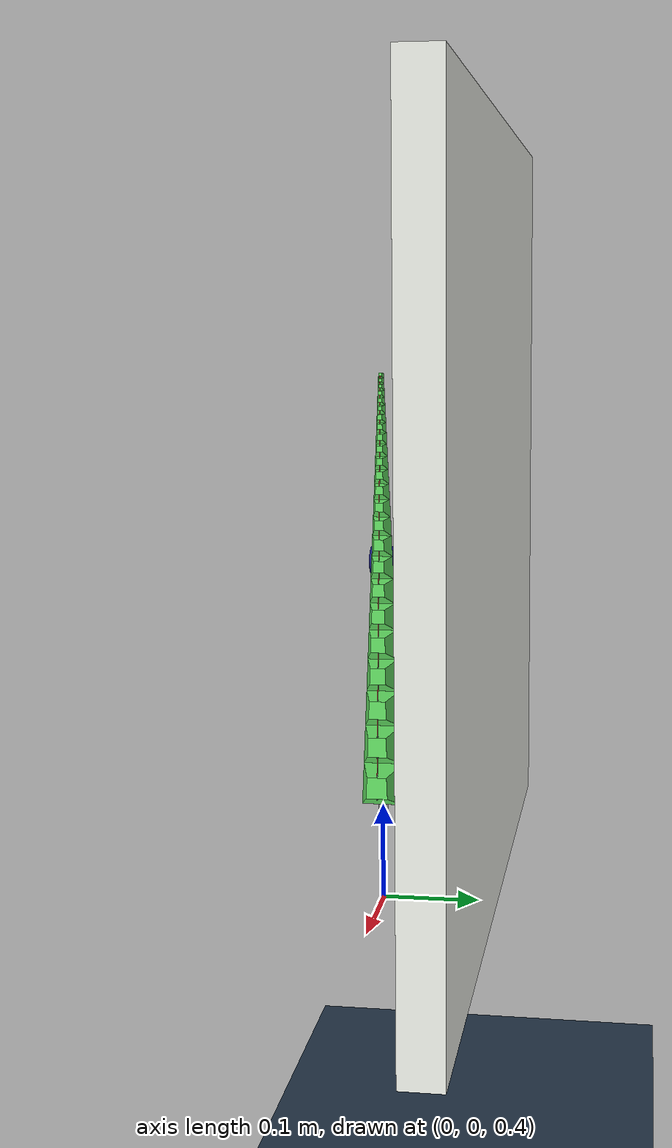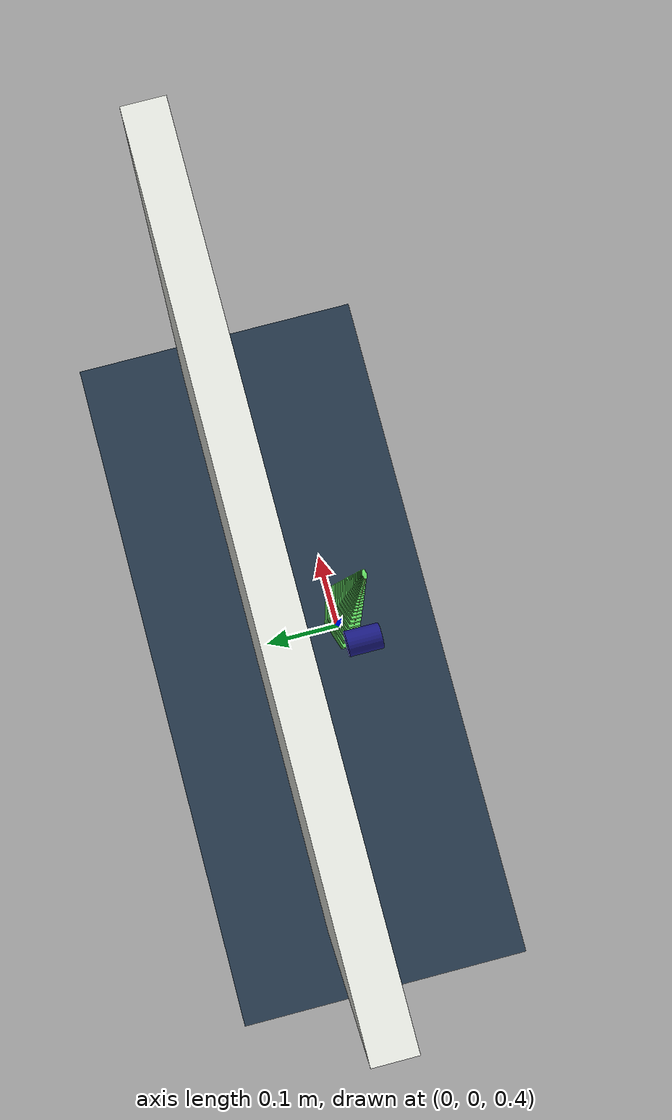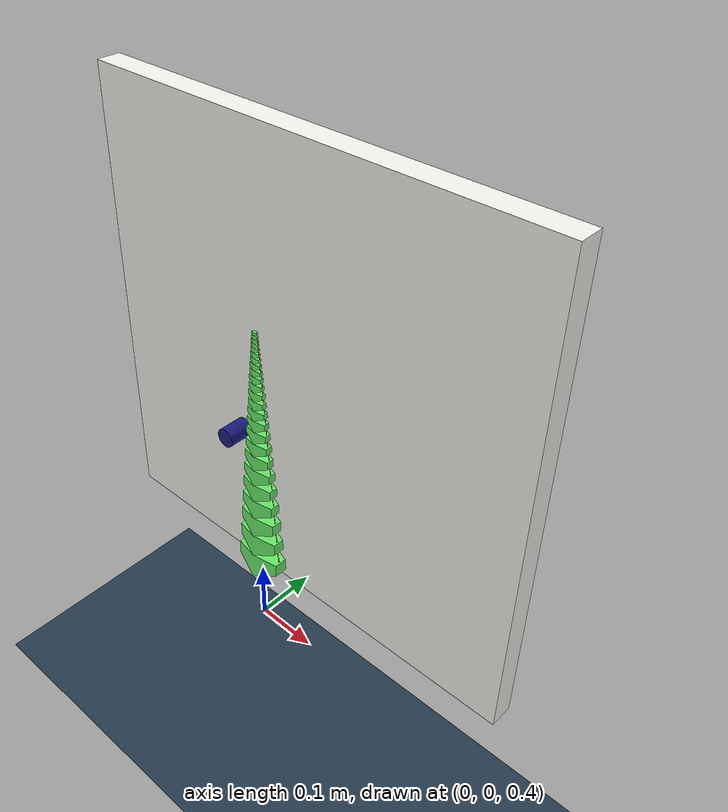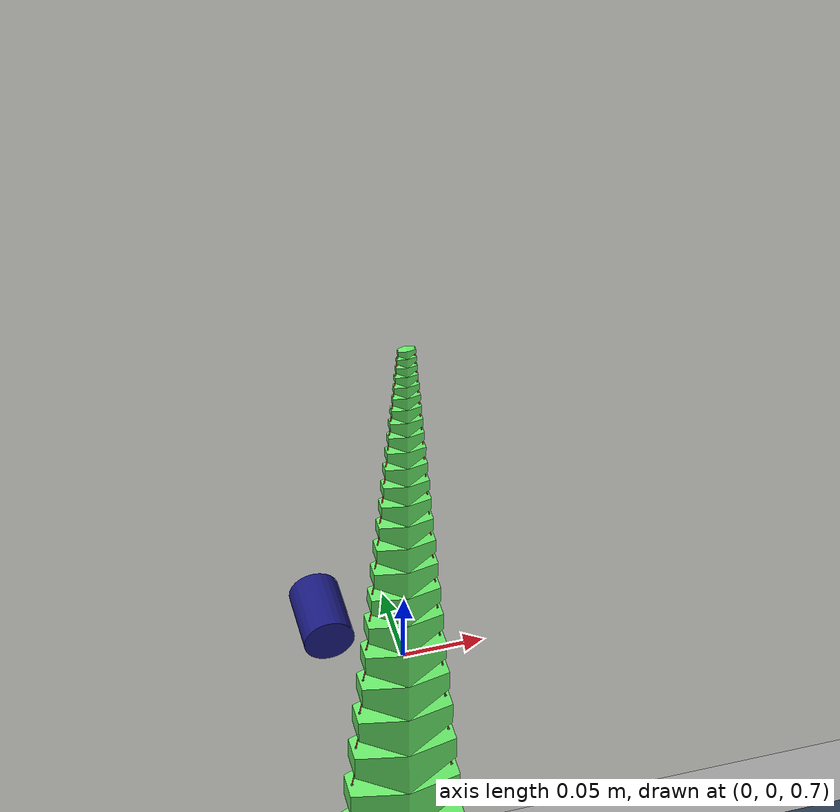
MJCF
<mujoco model="2Dspiral">
<compiler angle="radian" />
<option gravity="0 0 0"/>
<size nconmax="5000" njmax="5000"/>

<default>
	<default class="freej">
		<joint type="free" damping="0" armature="0" limited="false"/>
	</default>
</default>

<asset>
	<mesh name="1" file="model/P24.STL" scale="1  1  1"/>
	<mesh name="2" file="model/P24.STL" scale="0.91266     0.91266     0.91266"/>
	<mesh name="3" file="model/P24.STL" scale="0.83295     0.83295     0.83295"/>
	<mesh name="4" file="model/P24.STL" scale="0.7602      0.7602      0.7602"/>
	<mesh name="5" file="model/P24.STL" scale="0.6938      0.6938      0.6938"/>
	<mesh name="6" file="model/P24.STL" scale="0.6332      0.6332      0.6332"/>
	<mesh name="7" file="model/P24.STL" scale="0.5779      0.5779      0.5779"/>
	<mesh name="8" file="model/P24.STL" scale="0.52742     0.52742     0.52742"/>
	<mesh name="9" file="model/P24.STL" scale="0.48136     0.48136     0.48136"/>
	<mesh name="10" file="model/P24.STL" scale="0.43931     0.43931     0.43931"/>
	<mesh name="11" file="model/P24.STL" scale="0.40094     0.40094     0.40094"/>
	<mesh name="12" file="model/P24.STL" scale="0.36592     0.36592     0.36592"/>
	<mesh name="13" file="model/P24.STL" scale="0.33396     0.33396     0.33396"/>
	<mesh name="14" file="model/P24.STL" scale="0.3048      0.3048      0.3048"/>
	<mesh name="15" file="model/P24.STL" scale="0.27817     0.27817     0.27817"/>
	<mesh name="16" file="model/P24.STL" scale="0.25388     0.25388     0.25388"/>
	<mesh name="17" file="model/P24.STL" scale="0.2317      0.2317      0.2317"/>
	<mesh name="18" file="model/P24.STL" scale="0.21147     0.21147     0.21147"/>
	<mesh name="19" file="model/P24.STL" scale="0.193       0.193       0.193"/>
	<mesh name="20" file="model/P24.STL" scale="0.17614     0.17614     0.17614"/>
	<mesh name="21" file="model/P24.STL" scale="0.16076     0.16076     0.16076"/>
	<mesh name="22" file="model/P24.STL" scale="0.14672     0.14672     0.14672"/>
	<mesh name="23" file="model/P24.STL" scale="0.1339      0.1339      0.1339"/>
	<mesh name="24" file="model/P24.STL" scale="0.12221     0.12221     0.12221"/>
	<texture name="texplane" type="2d" builtin="checker" rgb1=".2 .3 .4" rgb2=".1 0.15 0.2" width="512" height="512" mark="cross" markrgb=".8 .8 .8"/>
	<texture type="skybox" builtin="gradient" rgb1="0.3 0.5 0.7" rgb2="0 0 0" width="512" height="3072" />
	<material name="matplane" reflectance="0.3" texture="texplane" texrepeat="1 1" texuniform="true"/>
</asset>

<worldbody>
<geom name="ground" type="plane" size="10 10 1" pos="0 0 0" quat="1 0 0 0" material="matplane" condim="1"/>
<light pos="1 0.5 0.7" dir="-1 -0.5 -1" directional="true" castshadow="false" diffuse="0.4 0.4 0.4" specular="0.1 0.1 0.1" />
<body name="mocapt" mocap="true" pos="0 0 0.5">
	<geom type="box" group="1" size="0.001 0.005 0.005" contype="0" conaffinity="0" rgba=".5 .5 .5 1"/>
</body>

	<body name="O1" mocap="true" pos="-0.05 0 0.75" euler="1.57 0 0">
		<geom type="cylinder" group="1" size="0.015 0.02" rgba=".1 .1 .5 1"/>
		<inertial pos="0 0 0" quat="1 0 0 0" mass="0.1" diaginertia="0.0013 0.0013 0.0002" />
	</body>

<body name="B0" pos="0           0         0.5">
	<joint class="freej"/>
	<geom type="mesh" mesh="1" name="1" pos="0 0 0" euler="0 0 0" rgba="0.4 0.9 0.4 1"/>
	<inertial pos="0.022087 0 0" quat="1 0 0 0" mass="0.01" diaginertia="0.000437    0.000437  0.00054879" />
	<site name="s0_1" pos="-0.036378           0    0.016725" size="0.001       0.001       0.001"/>
	<site name="s0_2" pos="0.036378           0    0.016725" size="0.001       0.001       0.001"/>
	<site name="s0_3" pos="-0.036378           0    0.040792" size="0.001       0.001       0.001"/>
	<site name="s0_4" pos="0.036378           0    0.040792" size="0.001       0.001       0.001"/>

	<body name="B1" pos=" 0 0 0.044173">
		<joint name="J1" pos="0 0 0" axis="0 -1 0" limited="true" range="-0.523       0.523" stiffness="0.041647" damping="0.0083295"  />
		<geom type="mesh" mesh="2" name="2" pos="0 0 0" euler="0 0 0" rgba="0.4 0.9 0.4 1"/>
		<inertial pos="0.020157 0 0" quat="1 0 0 0" mass="0.007602" diaginertia="0.000364    0.000364  0.00045711" />
		<site name="s1_1" pos="-0.033201           0    0.015264" size="0.00091266  0.00091266  0.00091266"/>
		<site name="s1_2" pos="0.033201           0    0.015264" size="0.00091266  0.00091266  0.00091266"/>
		<site name="s1_3" pos="-0.033201           0     0.03723" size="0.00091266  0.00091266  0.00091266"/>
		<site name="s1_4" pos="0.033201           0     0.03723" size="0.00091266  0.00091266  0.00091266"/>
		<body name="B2" pos=" 0 0 0.040315">
			<joint name="J2" pos="0 0 0" axis="0 -1 0" limited="true" range="-0.523       0.523" stiffness="0.03469" damping="0.006938"  />
			<geom type="mesh" mesh="3" name="3" pos="0 0 0" euler="0 0 0" rgba="0.4 0.9 0.4 1"/>
			<inertial pos="0.018397 0 0" quat="1 0 0 0" mass="0.005779" diaginertia="0.00030319  0.00030319  0.00038075" />
			<site name="s2_1" pos="-0.030301           0    0.013931" size="0.00083295  0.00083295  0.00083295"/>
			<site name="s2_2" pos="0.030301           0    0.013931" size="0.00083295  0.00083295  0.00083295"/>
			<site name="s2_3" pos="-0.030301           0    0.033978" size="0.00083295  0.00083295  0.00083295"/>
			<site name="s2_4" pos="0.030301           0    0.033978" size="0.00083295  0.00083295  0.00083295"/>
			<body name="B3" pos=" 0 0 0.036794">
				<joint name="J3" pos="0 0 0" axis="0 -1 0" limited="true" range="-0.523       0.523" stiffness="0.028895" damping="0.005779"  />
				<geom type="mesh" mesh="4" name="4" pos="0 0 0" euler="0 0 0" rgba="0.4 0.9 0.4 1"/>
				<inertial pos="0.01679 0 0" quat="1 0 0 0" mass="0.0043931" diaginertia="0.00025254  0.00025254  0.00031714" />
				<site name="s3_1" pos="-0.027654           0    0.012714" size="0.0007602   0.0007602   0.0007602"/>
				<site name="s3_2" pos="0.027654           0    0.012714" size="0.0007602   0.0007602   0.0007602"/>
				<site name="s3_3" pos="-0.027654           0     0.03101" size="0.0007602   0.0007602   0.0007602"/>
				<site name="s3_4" pos="0.027654           0     0.03101" size="0.0007602   0.0007602   0.0007602"/>
				<body name="B4" pos=" 0 0 0.03358">
					<joint name="J4" pos="0 0 0" axis="0 -1 0" limited="true" range="-0.523       0.523" stiffness="0.024068" damping="0.0048136"  />
					<geom type="mesh" mesh="5" name="5" pos="0 0 0" euler="0 0 0" rgba="0.4 0.9 0.4 1"/>
					<inertial pos="0.015324 0 0" quat="1 0 0 0" mass="0.0033396" diaginertia="0.00021035  0.00021035  0.00026416" />
					<site name="s4_1" pos="-0.025239           0    0.011604" size="0.0006938   0.0006938   0.0006938"/>
					<site name="s4_2" pos="0.025239           0    0.011604" size="0.0006938   0.0006938   0.0006938"/>
					<site name="s4_3" pos="-0.025239           0    0.028302" size="0.0006938   0.0006938   0.0006938"/>
					<site name="s4_4" pos="0.025239           0    0.028302" size="0.0006938   0.0006938   0.0006938"/>
					<body name="B5" pos=" 0 0 0.030647">
						<joint name="J5" pos="0 0 0" axis="0 -1 0" limited="true" range="-0.523       0.523" stiffness="0.020047" damping="0.0040094"  />
						<geom type="mesh" mesh="6" name="6" pos="0 0 0" euler="0 0 0" rgba="0.4 0.9 0.4 1"/>
						<inertial pos="0.013985 0 0" quat="1 0 0 0" mass="0.0025388" diaginertia="0.00017521  0.00017521  0.00022003" />
						<site name="s5_1" pos="-0.023035           0     0.01059" size="0.0006332   0.0006332   0.0006332"/>
						<site name="s5_2" pos="0.023035           0     0.01059" size="0.0006332   0.0006332   0.0006332"/>
						<site name="s5_3" pos="-0.023035           0     0.02583" size="0.0006332   0.0006332   0.0006332"/>
						<site name="s5_4" pos="0.023035           0     0.02583" size="0.0006332   0.0006332   0.0006332"/>
						<body name="B6" pos=" 0 0 0.02797">
							<joint name="J6" pos="0 0 0" axis="0 -1 0" limited="true" range="-0.523       0.523" stiffness="0.016698" damping="0.0033396"  />
							<geom type="mesh" mesh="7" name="7" pos="0 0 0" euler="0 0 0" rgba="0.4 0.9 0.4 1"/>
							<inertial pos="0.012764 0 0" quat="1 0 0 0" mass="0.00193" diaginertia="0.00014594  0.00014594  0.00018328" />
							<site name="s6_1" pos="-0.021023           0   0.0096652" size="0.0005779   0.0005779   0.0005779"/>
							<site name="s6_2" pos="0.021023           0   0.0096652" size="0.0005779   0.0005779   0.0005779"/>
							<site name="s6_3" pos="-0.021023           0    0.023574" size="0.0005779   0.0005779   0.0005779"/>
							<site name="s6_4" pos="0.021023           0    0.023574" size="0.0005779   0.0005779   0.0005779"/>
							<body name="B7" pos=" 0 0 0.025527">
								<joint name="J7" pos="0 0 0" axis="0 -1 0" limited="true" range="-0.523       0.523" stiffness="0.013909" damping="0.0027817"  />
								<geom type="mesh" mesh="8" name="8" pos="0 0 0" euler="0 0 0" rgba="0.4 0.9 0.4 1"/>
								<inertial pos="0.011649 0 0" quat="1 0 0 0" mass="0.0014672" diaginertia="0.00012156  0.00012156  0.00015266" />
								<site name="s7_1" pos="-0.019187           0    0.008821" size="0.00052742  0.00052742  0.00052742"/>
								<site name="s7_2" pos="0.019187           0    0.008821" size="0.00052742  0.00052742  0.00052742"/>
								<site name="s7_3" pos="-0.019187           0    0.021515" size="0.00052742  0.00052742  0.00052742"/>
								<site name="s7_4" pos="0.019187           0    0.021515" size="0.00052742  0.00052742  0.00052742"/>
								<body name="B8" pos=" 0 0 0.023298">
									<joint name="J8" pos="0 0 0" axis="0 -1 0" limited="true" range="-0.523       0.523" stiffness="0.011585" damping="0.002317"  />
									<geom type="mesh" mesh="9" name="9" pos="0 0 0" euler="0 0 0" rgba="0.4 0.9 0.4 1"/>
									<inertial pos="0.010631 0 0" quat="1 0 0 0" mass="0.0011153" diaginertia="0.00010125  0.00010125  0.00012716" />
									<site name="s8_1" pos="-0.017511           0   0.0080506" size="0.00048136  0.00048136  0.00048136"/>
									<site name="s8_2" pos="0.017511           0   0.0080506" size="0.00048136  0.00048136  0.00048136"/>
									<site name="s8_3" pos="-0.017511           0    0.019636" size="0.00048136  0.00048136  0.00048136"/>
									<site name="s8_4" pos="0.017511           0    0.019636" size="0.00048136  0.00048136  0.00048136"/>
									<body name="B9" pos=" 0 0 0.021263">
										<joint name="J9" pos="0 0 0" axis="0 -1 0" limited="true" range="-0.523       0.523" stiffness="0.0096498" damping="0.00193"  />
										<geom type="mesh" mesh="10" name="10" pos="0 0 0" euler="0 0 0" rgba="0.4 0.9 0.4 1"/>
										<inertial pos="0.0097029 0 0" quat="1 0 0 0" mass="0.00084786" diaginertia="8.434e-05   8.434e-05  0.00010591" />
										<site name="s9_1" pos="-0.015981           0   0.0073475" size="0.00043931  0.00043931  0.00043931"/>
										<site name="s9_2" pos="0.015981           0   0.0073475" size="0.00043931  0.00043931  0.00043931"/>
										<site name="s9_3" pos="-0.015981           0    0.017921" size="0.00043931  0.00043931  0.00043931"/>
										<site name="s9_4" pos="0.015981           0    0.017921" size="0.00043931  0.00043931  0.00043931"/>
										<body name="B10" pos=" 0 0 0.019406">
											<joint name="J10" pos="0 0 0" axis="0 -1 0" limited="true" range="-0.523       0.523" stiffness="0.0080378" damping="0.0016076"  />
											<geom type="mesh" mesh="11" name="11" pos="0 0 0" euler="0 0 0" rgba="0.4 0.9 0.4 1"/>
											<inertial pos="0.0088555 0 0" quat="1 0 0 0" mass="0.00064454" diaginertia="7.025e-05   7.025e-05  8.8221e-05" />
											<site name="s10_1" pos="-0.014586           0   0.0067057" size="0.00040094  0.00040094  0.00040094"/>
											<site name="s10_2" pos="0.014586           0   0.0067057" size="0.00040094  0.00040094  0.00040094"/>
											<site name="s10_3" pos="-0.014586           0    0.016355" size="0.00040094  0.00040094  0.00040094"/>
											<site name="s10_4" pos="0.014586           0    0.016355" size="0.00040094  0.00040094  0.00040094"/>
											<body name="B11" pos=" 0 0 0.017711">
												<joint name="J11" pos="0 0 0" axis="0 -1 0" limited="true" range="-0.523       0.523" stiffness="0.006695" damping="0.001339"  />
												<geom type="mesh" mesh="12" name="12" pos="0 0 0" euler="0 0 0" rgba="0.4 0.9 0.4 1"/>
												<inertial pos="0.008082 0 0" quat="1 0 0 0" mass="0.00048998" diaginertia="5.8515e-05  5.8515e-05  7.3484e-05" />
												<site name="s11_1" pos="-0.013312           0     0.00612" size="0.00036592  0.00036592  0.00036592"/>
												<site name="s11_2" pos="0.013312           0     0.00612" size="0.00036592  0.00036592  0.00036592"/>
												<site name="s11_3" pos="-0.013312           0    0.014927" size="0.00036592  0.00036592  0.00036592"/>
												<site name="s11_4" pos="0.013312           0    0.014927" size="0.00036592  0.00036592  0.00036592"/>
												<body name="B12" pos=" 0 0 0.016164">
													<joint name="J12" pos="0 0 0" axis="0 -1 0" limited="true" range="-0.523       0.523" stiffness="0.0055766" damping="0.0011153"  />
													<geom type="mesh" mesh="13" name="13" pos="0 0 0" euler="0 0 0" rgba="0.4 0.9 0.4 1"/>
													<inertial pos="0.0073761 0 0" quat="1 0 0 0" mass="0.00037248" diaginertia="4.874e-05   4.874e-05  6.1208e-05" />
													<site name="s12_1" pos="-0.012149           0   0.0055855" size="0.00033396  0.00033396  0.00033396"/>
													<site name="s12_2" pos="0.012149           0   0.0055855" size="0.00033396  0.00033396  0.00033396"/>
													<site name="s12_3" pos="-0.012149           0    0.013623" size="0.00033396  0.00033396  0.00033396"/>
													<site name="s12_4" pos="0.012149           0    0.013623" size="0.00033396  0.00033396  0.00033396"/>
													<body name="B13" pos=" 0 0 0.014752">
														<joint name="J13" pos="0 0 0" axis="0 -1 0" limited="true" range="-0.523       0.523" stiffness="0.004645" damping="0.000929"  />
														<geom type="mesh" mesh="14" name="14" pos="0 0 0" euler="0 0 0" rgba="0.4 0.9 0.4 1"/>
														<inertial pos="0.0067319 0 0" quat="1 0 0 0" mass="0.00028316" diaginertia="4.0597e-05  4.0597e-05  5.0983e-05" />
														<site name="s13_1" pos="-0.011088           0   0.0050977" size="0.0003048   0.0003048   0.0003048"/>
														<site name="s13_2" pos="0.011088           0   0.0050977" size="0.0003048   0.0003048   0.0003048"/>
														<site name="s13_3" pos="-0.011088           0    0.012433" size="0.0003048   0.0003048   0.0003048"/>
														<site name="s13_4" pos="0.011088           0    0.012433" size="0.0003048   0.0003048   0.0003048"/>
														<body name="B14" pos=" 0 0 0.013464">
															<joint name="J14" pos="0 0 0" axis="0 -1 0" limited="true" range="-0.523       0.523" stiffness="0.003869" damping="0.00077381"  />
															<geom type="mesh" mesh="15" name="15" pos="0 0 0" euler="0 0 0" rgba="0.4 0.9 0.4 1"/>
															<inertial pos="0.0061439 0 0" quat="1 0 0 0" mass="0.00021525" diaginertia="3.3815e-05  3.3815e-05  4.2466e-05" />
															<site name="s14_1" pos="-0.010119           0   0.0046524" size="0.00027817  0.00027817  0.00027817"/>
															<site name="s14_2" pos="0.010119           0   0.0046524" size="0.00027817  0.00027817  0.00027817"/>
															<site name="s14_3" pos="-0.010119           0    0.011347" size="0.00027817  0.00027817  0.00027817"/>
															<site name="s14_4" pos="0.010119           0    0.011347" size="0.00027817  0.00027817  0.00027817"/>
															<body name="B15" pos=" 0 0 0.012288">
																<joint name="J15" pos="0 0 0" axis="0 -1 0" limited="true" range="-0.523       0.523" stiffness="0.0032227" damping="0.00064454"  />
																<geom type="mesh" mesh="16" name="16" pos="0 0 0" euler="0 0 0" rgba="0.4 0.9 0.4 1"/>
																<inertial pos="0.0056073 0 0" quat="1 0 0 0" mass="0.00016363" diaginertia="2.8166e-05  2.8166e-05  3.5372e-05" />
																<site name="s15_1" pos="-0.0092356           0   0.0042461" size="0.00025388  0.00025388  0.00025388"/>
																<site name="s15_2" pos="0.0092356           0   0.0042461" size="0.00025388  0.00025388  0.00025388"/>
																<site name="s15_3" pos="-0.0092356           0    0.010356" size="0.00025388  0.00025388  0.00025388"/>
																<site name="s15_4" pos="0.0092356           0    0.010356" size="0.00025388  0.00025388  0.00025388"/>
																<body name="B16" pos=" 0 0 0.011215">
																	<joint name="J16" pos="0 0 0" axis="0 -1 0" limited="true" range="-0.523       0.523" stiffness="0.0026843" damping="0.00053687"  />
																	<geom type="mesh" mesh="17" name="17" pos="0 0 0" euler="0 0 0" rgba="0.4 0.9 0.4 1"/>
																	<inertial pos="0.0051175 0 0" quat="1 0 0 0" mass="0.00012439" diaginertia="2.3461e-05  2.3461e-05  2.9463e-05" />
																	<site name="s16_1" pos="-0.0084289           0   0.0038752" size="0.0002317   0.0002317   0.0002317"/>
																	<site name="s16_2" pos="0.0084289           0   0.0038752" size="0.0002317   0.0002317   0.0002317"/>
																	<site name="s16_3" pos="-0.0084289           0   0.0094518" size="0.0002317   0.0002317   0.0002317"/>
																	<site name="s16_4" pos="0.0084289           0   0.0094518" size="0.0002317   0.0002317   0.0002317"/>
																	<body name="B17" pos=" 0 0 0.010235">
																		<joint name="J17" pos="0 0 0" axis="0 -1 0" limited="true" range="-0.523       0.523" stiffness="0.0022359" damping="0.00044718"  />
																		<geom type="mesh" mesh="18" name="18" pos="0 0 0" euler="0 0 0" rgba="0.4 0.9 0.4 1"/>
																		<inertial pos="0.0046706 0 0" quat="1 0 0 0" mass="9.4564e-05" diaginertia="1.9542e-05  1.9542e-05  2.4541e-05" />
																		<site name="s17_1" pos="-0.0076927           0   0.0035367" size="0.00021147  0.00021147  0.00021147"/>
																		<site name="s17_2" pos="0.0076927           0   0.0035367" size="0.00021147  0.00021147  0.00021147"/>
																		<site name="s17_3" pos="-0.0076927           0   0.0086262" size="0.00021147  0.00021147  0.00021147"/>
																		<site name="s17_4" pos="0.0076927           0   0.0086262" size="0.00021147  0.00021147  0.00021147"/>
																		<body name="B18" pos=" 0 0 0.0093411">
																			<joint name="J18" pos="0 0 0" axis="0 -1 0" limited="true" range="-0.523       0.523" stiffness="0.0018624" damping="0.00037248"  />
																			<geom type="mesh" mesh="19" name="19" pos="0 0 0" euler="0 0 0" rgba="0.4 0.9 0.4 1"/>
																			<inertial pos="0.0042626 0 0" quat="1 0 0 0" mass="7.1887e-05" diaginertia="1.6277e-05  1.6277e-05  2.0441e-05" />
																			<site name="s18_1" pos="-0.0070208           0   0.0032278" size="0.000193    0.000193    0.000193"/>
																			<site name="s18_2" pos="0.0070208           0   0.0032278" size="0.000193    0.000193    0.000193"/>
																			<site name="s18_3" pos="-0.0070208           0   0.0078728" size="0.000193    0.000193    0.000193"/>
																			<site name="s18_4" pos="0.0070208           0   0.0078728" size="0.000193    0.000193    0.000193"/>
																			<body name="B19" pos=" 0 0 0.0085253">
																				<joint name="J19" pos="0 0 0" axis="0 -1 0" limited="true" range="-0.523       0.523" stiffness="0.0015513" damping="0.00031025"  />
																				<geom type="mesh" mesh="20" name="20" pos="0 0 0" euler="0 0 0" rgba="0.4 0.9 0.4 1"/>
																				<inertial pos="0.0038903 0 0" quat="1 0 0 0" mass="5.4648e-05" diaginertia="1.3558e-05  1.3558e-05  1.7026e-05" />
																				<site name="s19_1" pos="-0.0064076           0   0.0029459" size="0.00017614  0.00017614  0.00017614"/>
																				<site name="s19_2" pos="0.0064076           0   0.0029459" size="0.00017614  0.00017614  0.00017614"/>
																				<site name="s19_3" pos="-0.0064076           0   0.0071852" size="0.00017614  0.00017614  0.00017614"/>
																				<site name="s19_4" pos="0.0064076           0   0.0071852" size="0.00017614  0.00017614  0.00017614"/>
																				<body name="B20" pos=" 0 0 0.0077806">
																					<joint name="J20" pos="0 0 0" axis="0 -1 0" limited="true" range="-0.523       0.523" stiffness="0.0012921" damping="0.00025842"  />
																					<geom type="mesh" mesh="21" name="21" pos="0 0 0" euler="0 0 0" rgba="0.4 0.9 0.4 1"/>
																					<inertial pos="0.0035505 0 0" quat="1 0 0 0" mass="4.1543e-05" diaginertia="1.1293e-05  1.1293e-05  1.4182e-05" />
																					<site name="s20_1" pos="-0.005848           0   0.0026886" size="0.00016076  0.00016076  0.00016076"/>
																					<site name="s20_2" pos="0.005848           0   0.0026886" size="0.00016076  0.00016076  0.00016076"/>
																					<site name="s20_3" pos="-0.005848           0   0.0065576" size="0.00016076  0.00016076  0.00016076"/>
																					<site name="s20_4" pos="0.005848           0   0.0065576" size="0.00016076  0.00016076  0.00016076"/>
																					<body name="B21" pos=" 0 0 0.0071011">
																						<joint name="J21" pos="0 0 0" axis="0 -1 0" limited="true" range="-0.523       0.523" stiffness="0.0010763" damping="0.00021525"  />
																						<geom type="mesh" mesh="22" name="22" pos="0 0 0" euler="0 0 0" rgba="0.4 0.9 0.4 1"/>
																						<inertial pos="0.0032404 0 0" quat="1 0 0 0" mass="3.1581e-05" diaginertia="9.4066e-06  9.4066e-06  1.1813e-05" />
																						<site name="s21_1" pos="-0.0053372           0   0.0024538" size="0.00014672  0.00014672  0.00014672"/>
																						<site name="s21_2" pos="0.0053372           0   0.0024538" size="0.00014672  0.00014672  0.00014672"/>
																						<site name="s21_3" pos="-0.0053372           0   0.0059849" size="0.00014672  0.00014672  0.00014672"/>
																						<site name="s21_4" pos="0.0053372           0   0.0059849" size="0.00014672  0.00014672  0.00014672"/>
																						<body name="B22" pos=" 0 0 0.0064809">
																							<joint name="J22" pos="0 0 0" axis="0 -1 0" limited="true" range="-0.523       0.523" stiffness="0.00089647" damping="0.00017929"  />
																							<geom type="mesh" mesh="23" name="23" pos="0 0 0" euler="0 0 0" rgba="0.4 0.9 0.4 1"/>
																							<inertial pos="0.0029574 0 0" quat="1 0 0 0" mass="2.4008e-05" diaginertia="7.8352e-06  7.8352e-06  9.8395e-06" />
																							<site name="s22_1" pos="-0.004871           0   0.0022395" size="0.0001339   0.0001339   0.0001339"/>
																							<site name="s22_2" pos="0.004871           0   0.0022395" size="0.0001339   0.0001339   0.0001339"/>
																							<site name="s22_3" pos="-0.004871           0   0.0054621" size="0.0001339   0.0001339   0.0001339"/>
																							<site name="s22_4" pos="0.004871           0   0.0054621" size="0.0001339   0.0001339   0.0001339"/>
																							<body name="B23" pos=" 0 0 0.0059148">
																								<joint name="J23" pos="0 0 0" axis="0 -1 0" limited="true" range="-0.523       0.523" stiffness="0.00074671" damping="0.00014934"  />
																								<geom type="mesh" mesh="24" name="24" pos="0 0 0" euler="0 0 0" rgba="0.4 0.9 0.4 1"/>
																								<inertial pos="0.0026991 0 0" quat="1 0 0 0" mass="1.8251e-05" diaginertia="6.5263e-06  6.5263e-06  8.1958e-06" />
																								<site name="s23_1" pos="-0.0044456           0   0.0020439" size="0.00012221  0.00012221  0.00012221"/>
																								<site name="s23_2" pos="0.0044456           0   0.0020439" size="0.00012221  0.00012221  0.00012221"/>
																								<site name="s23_3" pos="-0.0044456           0   0.0049851" size="0.00012221  0.00012221  0.00012221"/>
																								<site name="s23_4" pos="0.0044456           0   0.0049851" size="0.00012221  0.00012221  0.00012221"/>
																							</body>
																						</body>
																					</body>
																				</body>
																			</body>
																		</body>
																	</body>
																</body>
															</body>
														</body>
													</body>
												</body>
											</body>
										</body>
									</body>
								</body>
							</body>
						</body>
					</body>
				</body>
			</body>
		</body>
	</body>
</body>

<body name="object table" pos="0.1 0.0 -1">
	<geom name="object_table" size="0.4 0.02 0.4" pos="-0.1 0.1 1.8" type="box" rgba="0.95 0.96 0.93 1.0" />
</body>

<camera name="camera1" pos="0.0 -1 0.8" euler="1.6 0 0" fovy="60"/>

</worldbody>

<actuator>
	<muscle name="A_1" ctrllimited="true"  lengthrange="0.15         0.6" ctrlrange="0  1" force="2" tendon="t1"/>
	<muscle name="A_2" ctrllimited="true"  lengthrange="0.15         0.6" ctrlrange="0  1" force="2" tendon="t2"/>
</actuator>
<tendon>
	<spatial name="t1" width="0.0004" frictionloss="0.1" rgba=".95 .3 .3 1" limited="true" range="0.15         0.6">
		<site site="s0_1"/>
		<site site="s0_3"/>
		<site site="s1_1"/>
		<site site="s1_3"/>
		<site site="s2_1"/>
		<site site="s2_3"/>
		<site site="s3_1"/>
		<site site="s3_3"/>
		<site site="s4_1"/>
		<site site="s4_3"/>
		<site site="s5_1"/>
		<site site="s5_3"/>
		<site site="s6_1"/>
		<site site="s6_3"/>
		<site site="s7_1"/>
		<site site="s7_3"/>
		<site site="s8_1"/>
		<site site="s8_3"/>
		<site site="s9_1"/>
		<site site="s9_3"/>
		<site site="s10_1"/>
		<site site="s10_3"/>
		<site site="s11_1"/>
		<site site="s11_3"/>
		<site site="s12_1"/>
		<site site="s12_3"/>
		<site site="s13_1"/>
		<site site="s13_3"/>
		<site site="s14_1"/>
		<site site="s14_3"/>
		<site site="s15_1"/>
		<site site="s15_3"/>
		<site site="s16_1"/>
		<site site="s16_3"/>
		<site site="s17_1"/>
		<site site="s17_3"/>
		<site site="s18_1"/>
		<site site="s18_3"/>
		<site site="s19_1"/>
		<site site="s19_3"/>
		<site site="s20_1"/>
		<site site="s20_3"/>
		<site site="s21_1"/>
		<site site="s21_3"/>
		<site site="s22_1"/>
		<site site="s22_3"/>
		<site site="s23_1"/>
		<site site="s23_3"/>
	</spatial>
	<spatial name="t2" width="0.0004" frictionloss="0.1" rgba=".95 .3 .3 1" limited="true" range="0.15         0.6">
		<site site="s0_2"/>
		<site site="s0_4"/>
		<site site="s1_2"/>
		<site site="s1_4"/>
		<site site="s2_2"/>
		<site site="s2_4"/>
		<site site="s3_2"/>
		<site site="s3_4"/>
		<site site="s4_2"/>
		<site site="s4_4"/>
		<site site="s5_2"/>
		<site site="s5_4"/>
		<site site="s6_2"/>
		<site site="s6_4"/>
		<site site="s7_2"/>
		<site site="s7_4"/>
		<site site="s8_2"/>
		<site site="s8_4"/>
		<site site="s9_2"/>
		<site site="s9_4"/>
		<site site="s10_2"/>
		<site site="s10_4"/>
		<site site="s11_2"/>
		<site site="s11_4"/>
		<site site="s12_2"/>
		<site site="s12_4"/>
		<site site="s13_2"/>
		<site site="s13_4"/>
		<site site="s14_2"/>
		<site site="s14_4"/>
		<site site="s15_2"/>
		<site site="s15_4"/>
		<site site="s16_2"/>
		<site site="s16_4"/>
		<site site="s17_2"/>
		<site site="s17_4"/>
		<site site="s18_2"/>
		<site site="s18_4"/>
		<site site="s19_2"/>
		<site site="s19_4"/>
		<site site="s20_2"/>
		<site site="s20_4"/>
		<site site="s21_2"/>
		<site site="s21_4"/>
		<site site="s22_2"/>
		<site site="s22_4"/>
		<site site="s23_2"/>
		<site site="s23_4"/>
	</spatial>
</tendon>
<equality>
	<weld body1="mocapt" body2="B0" solref="0.01 1" solimp=".9 .9 0.01"/>
</equality>

</mujoco>
